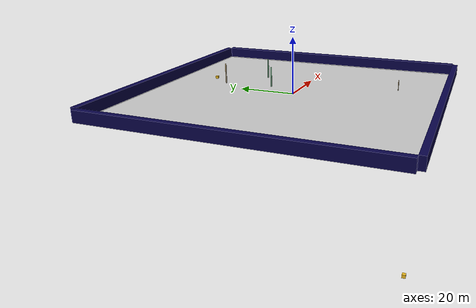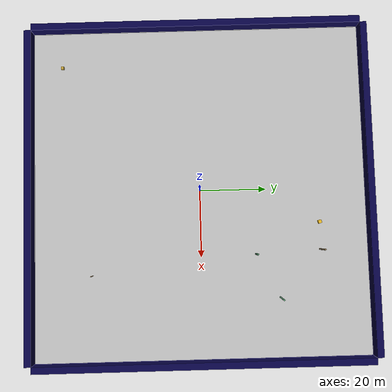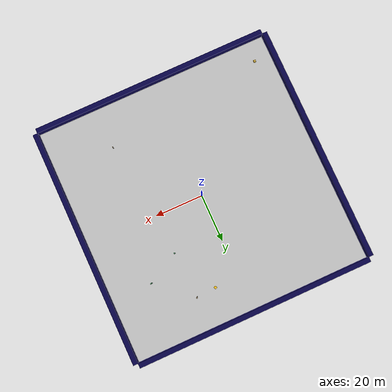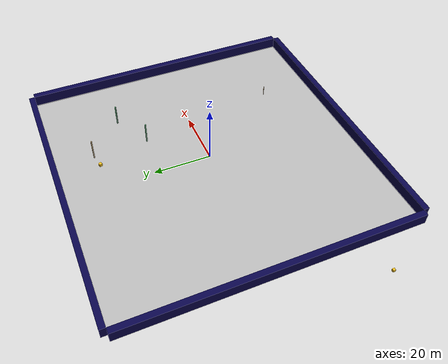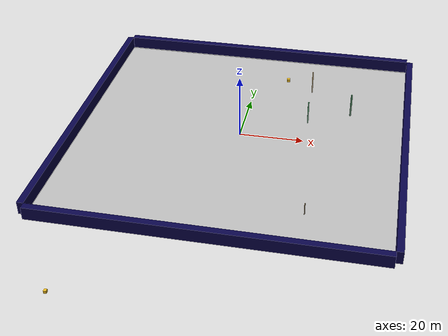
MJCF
<mujoco model="unnamed_model">
  <default>
    <default class="/" />
    <default class="border/" />
    <default class="border_1/" />
    <default class="border_2/" />
    <default class="border_3/" />
    <default class="placeholder/" />
    <default class="agent/" />
    <default class="tree0/" />
    <default class="tree1/" />
    <default class="stone/" />
    <default class="stone_1/" />
  </default>
  <worldbody>
    <body name="border/">
      <body name="border/border" pos="0 51 2">
        <geom name="border/border_geom" class="border/" type="box" size="50.0 1.0 2.0" rgba="0.035 0.016 0.29 1.0" />
      </body>
    </body>
    <body name="border_1/">
      <body name="border_1/border" pos="0 -51 2">
        <geom name="border_1/border_geom" class="border_1/" type="box" size="50.0 1.0 2.0" rgba="0.035 0.016 0.29 1.0" />
      </body>
    </body>
    <body name="border_2/">
      <body name="border_2/border" pos="51 0 2">
        <geom name="border_2/border_geom" class="border_2/" type="box" size="1.0 50.0 2.0" rgba="0.035 0.016 0.29 1.0" />
      </body>
    </body>
    <body name="border_3/">
      <body name="border_3/border" pos="-51 0 2">
        <geom name="border_3/border_geom" class="border_3/" type="box" size="1.0 50.0 2.0" rgba="0.035 0.016 0.29 1.0" />
      </body>
    </body>
    <body name="placeholder/">
      <body name="placeholder/placeholder" pos="-49 -49 -30">
        <geom name="placeholder/box_geom" class="placeholder/" type="box" size="0.5 0.5 0.5" rgba="0.949 0.7451 0.1333 1.0" euler="0 0 0" />
      </body>
    </body>
    <body euler="0 0 -165.1158392216349" name="agent/">
      <joint name="agent/boxagent_freeJoint/" class="/" type="free" />
      <body name="agent/agent" pos="-19.104050000000001 -32.006599999999999 0.5" euler="0 0 0">
        <geom name="agent/boxagent_geom" class="agent/" type="box" size="0.5 0.5 0.5" rgba="0.949 0.7451 0.1333 1.0" euler="0 0 0" />
        <camera name="agent/boxagent_camera" class="agent/" pos="1 0 0.5" euler="90 0 0" />
      </body>
    </body>
    <body name="tree0/">
      <body name="tree0/tree0" pos="24.740600000000001 -32.895299999999999 0.10000000000000001" euler="0 0 141.43320550033354">
        <geom name="tree0/tree_geom" class="tree0/" type="box" size="0.1 0.1 2.0" rgba="0.6980392156862745 0.6 0.43137254901960786 1.0" />
      </body>
    </body>
    <body name="tree1/">
      <body name="tree1/tree1" pos="32.881300000000003 23.8005 0.10000000000000001" euler="0 0 44.59101935719076">
        <geom name="tree1/tree_geom" class="tree1/" type="box" size="0.2 0.2 4.0" rgba="0.396078431372549 0.6705882352941176 0.48627450980392156 1.0" />
      </body>
    </body>
    <body name="stone/">
      <body name="stone/stone" pos="19.497350000000001 16.683300000000003 0.10000000000000001" euler="0 0 -80.226205211378812">
        <geom name="stone/stone_geom" class="stone/" type="box" size="0.2 0.2 4.0" rgba="0.396078431372549 0.6705882352941176 0.48627450980392156 1.0" />
      </body>
    </body>
    <body name="stone_1/">
      <body name="stone_1/stone" pos="18.579450000000001 36.432899999999989 0.10000000000000001" euler="0 0 -84.406407580681972">
        <geom name="stone_1/stone_geom" class="stone_1/" type="box" size="0.2 0.2 4.0" rgba="0.6980392156862745 0.6 0.43137254901960786 1.0" />
      </body>
    </body>
    <geom name="base_plane" class="/" type="plane" size="50 50 0.10000000000000001" />
  </worldbody>
</mujoco>
